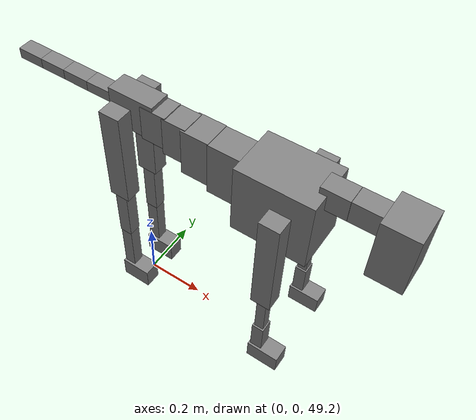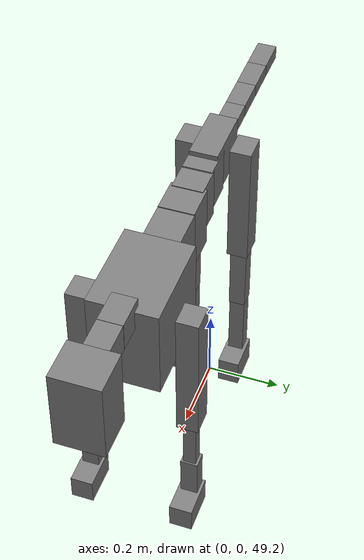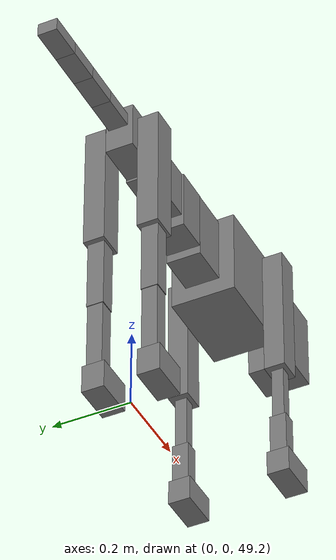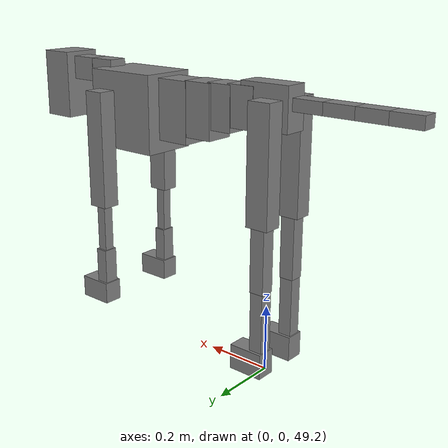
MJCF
<mujoco model="dog">

    <default>
        <joint armature="0.02" stiffness="1" damping="0.2" limited="true"/>
        <geom condim="3" friction="1 0.05 0.05" margin="0.01"/>
        <motor ctrllimited="true" ctrlrange="-1.0 1.0" forcelimited="true" gear="50"/>
    </default>

    <compiler inertiafromgeom="true" angle="radian"/>

    <option timestep="0.016" iterations="50" tolerance="1e-10" solver="Newton" jacobian="dense" cone="pyramidal"/>

    <size nconmax="20000" njmax="60000" nstack="5000000"/>
    <visual>
        <map force="0.1" zfar="30"/>
        <rgba haze="0.15 0.25 0.35 1"/>
        <quality shadowsize="2048"/>
        <global offwidth="800" offheight="800"/>
    </visual>

    <asset>
        <texture type="skybox" builtin="gradient" rgb1="0.3 0.5 0.7" rgb2="0 0 0" width="512" height="512"/>
        <texture name="texplane" type="2d" builtin="checker" rgb1=".2 .3 .4" rgb2=".1 0.15 0.2" width="512" height="512"
                 mark="cross" markrgb=".8 .8 .8"/>
        <texture name="texgeom" type="cube" builtin="flat" mark="cross" width="127" height="1278" rgb1="0.8 0.6 0.4"
                 rgb2="0.8 0.6 0.4" markrgb="1 1 1" random="0.01"/>

        <material name="matplane" reflectance="0.3" texture="texplane" texrepeat="1 1" texuniform="true"/>
        <material name="matgeom" texture="texgeom" texuniform="true" rgba="0.8 0.6 .4 1"/>
    </asset>

    <worldbody>
        <geom name="floor" pos="0 0 0" size="0 0 .25" type="plane" material="matplane" condim="3"/>

        <light directional="false" diffuse=".2 .2 .2" specular="0 0 0" pos="0 0 5" dir="0 0 -1" castshadow="false"/>
        <light mode="targetbodycom" target="torso" directional="false" diffuse=".8 .8 .8" specular="0.3 0.3 0.3"
               pos="0 0 4.0" dir="0 0 -1"/>

        <body name="root" pos="0 0 50">
            <freejoint name="root_1"/>
            <geom type="box" pos="0 0 -0.02" size="0.0774  0.0358  0.063" density="2030"/>

            <body name="spine1" pos="0.054 0 0">
                <joint name="spine1_y" axis="0 1 0" range="0 0.7" limited="true"/>
                <geom type="box" pos="0.02375 0 -0.03" size="0.04375  0.0375  0.05985" density="2030"/>

                <body name="spine2" pos="0.0612 0 0">
                    <joint name="spine2_y" axis="0 1 0" range="-0.15 0.15" limited="true"/>
                    <geom type="box" pos="0.03555  0  -0.04" size="0.04055  0.039  0.06615" density="2030"/>

                    <body name="spine3" pos="0.0730 0 0">
                        <joint name="spine3_y" axis="0 1 0" range="-0.15 0.15" limited="true"/>
                        <geom type="box" pos="0.03555  0  -0.057" size="0.04555  0.0445  0.081" density="2030"/>

                        <body name="spine4" pos="0.0780 0 0">
                            <joint name="spine4_y" axis="0 1 0" range="-0.15 0.15" limited="true"/>
                            <geom type="box" pos="0.05265  0  -0.07" size="0.05265  0.045  0.09135" density="2030"/>

                            <body name="torso" pos="0.1082 0 0">
                                <joint name="torso_y" axis="0 1 0" range="-0.15 0.15" limited="true"/>
                                <geom type="box" pos="0.11925  0  -0.085" size="0.11925  0.085  0.11745"
                                      density="2030"/>

                                <body name="neck1" pos="0.2160  0   0.0180">
                                    <joint name="neck1_y" axis="0 1 0" range="-1.2  -1" limited="true"/>
                                    <geom type="box" pos="0.0423  0  0" size="0.0423  0.03  0.036" density="2325"/>

                                    <body name="neck2" pos="0.0853  0  0">
                                        <joint name="neck2_y" axis="0 1 0" range="0.1  0" limited="true"/>
                                        <geom type="box" pos="0.0423  0  0" size="0.0423  0.03  0.036" density="2325"/>

                                        <body name="head" pos="0.0853  0  0">
                                            <joint name="head_y" axis="0 1 0" range="-0.3  -0.2" limited="true"/>
                                            <geom type="box" pos="0.0531  0  -0.055" size="0.0531  0.06  0.1044"
                                                  density="4030"/>

                                        </body>
                                    </body>
                                </body>

                                <body name="front_shoulder" pos="0.156  0   -0.0480">
                                    <joint name="front_shoulder_y" axis="0 1 0" range="-1 1.5" limited="true"/>
                                    <geom type="box" pos="0 0.13 -0.1501" size="0.0315  0.0269  0.1768" density="1158"/>
                                    <geom type="box" pos="0 -0.13 -0.1501" size="0.0315  0.0269  0.1768"
                                          density="1158"/>

                                    <body name="front_elbow" pos="0  0  -0.3003">
                                        <joint name="front_elbow_y" axis="0 1 0" range="-2 0" limited="true"/>
                                        <geom type="box" pos="0 0.13 -0.0908" size="0.0152  0.0155  0.0908"
                                              density="1081"/>
                                        <geom type="box" pos="0 -0.13 -0.0908" size="0.0152  0.0155  0.0908"
                                              density="1081"/>

                                        <body name="front_wrist" pos="0  0  -0.1816">
                                            <joint name="front_wrist_y" axis="0 1 0" range="-0.2 0" limited="true"/>
                                            <geom type="box" pos="0 0.13 -0.0544" size="0.0193  0.0215  0.0675"
                                                  density="1664"/>
                                            <geom type="box" pos="0 -0.13 -0.0544" size="0.0193  0.0215  0.0675"
                                                  density="1664"/>

                                            <body name="front_finger_end" pos="0  0  -0.1088">
                                                <joint name="front_finger_y" axis="0 1 0" range="-0.4 1"
                                                       limited="true"/>
                                                <geom type="box" pos="0.0286  0.13  -0.0180"
                                                      size="0.0525  0.0286  0.0330" density="1515"/>
                                                <geom type="box" pos="0.0286  -0.13  -0.0180"
                                                      size="0.0525  0.0286  0.0330" density="1515"/>

                                            </body>

                                        </body>
                                    </body>
                                </body>

                            </body>
                        </body>
                    </body>
                </body>
            </body>

            <body name="back_hip" pos="-0.03 0 -0.018">
                <joint name="back_hip_y" axis="0 1 0" range="-1.5 0.3" limited="true"/>
                <geom type="box" pos="0 0.07 -0.1473" size="0.0350  0.0274  0.1701" density="1154"/>
                <geom type="box" pos="0 -0.07 -0.1473" size="0.0350  0.0274  0.1701" density="1154"/>

                <body name="back_knee" pos="0  0  -0.2947">
                    <joint name="back_knee_y" axis="0 1 0" range="0 2.8" limited="true"/>
                    <geom type="box" pos="0 0.07 -0.0970" size="0.0219  0.0216  0.1125" density="1227"/>
                    <geom type="box" pos="0 -0.07 -0.0970" size="0.0219  0.0216  0.1125" density="1227"/>

                    <body name="back_ankle" pos="0  0  -0.1939">
                        <joint name="back_ankle_y" axis="0 1 0" range="-2.2 0" limited="true"/>
                        <geom type="box" pos="0 0.07 -0.1035" size="0.0201  0.0201  0.1147" density="1284"/>
                        <geom type="box" pos="0 -0.07 -0.1035" size="0.0201  0.0201  0.1147" density="1284"/>

                        <body name="back_toe_end" pos="0  0  -0.2070">
                            <joint name="back_toe_y" axis="0 1 0" range="-0.4 1" limited="true"/>
                            <geom type="box" pos="0.0285  0.07  -0.0224" size="0.0523  0.0285  0.0374" density="1515"/>
                            <geom type="box" pos="0.0285  -0.07  -0.0224" size="0.0523  0.0285  0.0374" density="1515"/>

                        </body>
                    </body>
                </body>
            </body>

            <body name="tail1" pos="-0.074 0 -0.006">
                <joint name="tail1_y" axis="0 1 0" range="-0.2 0.2" limited="true"/>
                <geom type="box" pos="-0.0536  0  0" size="0.045  0.025  0.0175" density="1587"/>

                <body name="tail2" pos="-0.09 0 0">
                    <joint name="tail2_y" axis="0 1 0" range="-0.2 0.2" limited="true"/>
                    <geom type="box" pos="-0.0536  0  0" size="0.045  0.025  0.0175" density="1587"/>

                    <body name="tail3" pos="-0.09 0 0">
                        <joint name="tail3_y" axis="0 1 0" range="-0.2 0.2" limited="true"/>
                        <geom type="box" pos="-0.0536  0  0" size="0.045  0.025  0.0175" density="1587"/>

                        <body name="tail4" pos="-0.09 0 0">
                            <joint name="tail4_y" axis="0 1 0" range="-0.2 0.2" limited="true"/>
                            <geom type="box" pos="-0.0536  0  0" size="0.045  0.025  0.0175" density="1587"/>

                        </body>
                    </body>
                </body>
            </body>
        </body>
    </worldbody>

    <actuator>
        <motor joint="spine1_y" forcerange="-150 150     "/>
        <motor joint="spine2_y" forcerange="-150 150     "/>
        <motor joint="spine3_y" forcerange="-150 150     "/>
        <motor joint="spine4_y" forcerange="-150 150     "/>
        <motor joint="torso_y" forcerange="-150 150     "/>
        <motor joint="neck1_y" forcerange="-100 100       "/>
        <motor joint="neck2_y" forcerange="-100 100       "/>
        <motor joint="head_y" forcerange="-150 150       "/>
        <motor joint="front_shoulder_y" forcerange="-160.12 119.22"/>
        <motor joint="front_elbow_y" forcerange="-108.44 104.58"/>
        <motor joint="front_wrist_y" forcerange="-65.91 105.73"/>
        <motor joint="front_finger_y" forcerange="-27.39 85.29"/>
        <motor joint="back_hip_y" forcerange="-326.01 239.76"/>
        <motor joint="back_knee_y" forcerange="-214.76 299.12"/>
        <motor joint="back_angle_y" forcerange="-66.77 155.59"/>
        <motor joint="back_toe_y" forcerange="-43.71 104.57"/>
        <motor joint="tail1_y" forcerange="-50 50     "/>
        <motor joint="tail2_y" forcerange="-50 50     "/>
        <motor joint="tail3_y" forcerange="-50 50     "/>
        <motor joint="tail4_y" forcerange="-50 50     "/>
    </actuator>
</mujoco>
